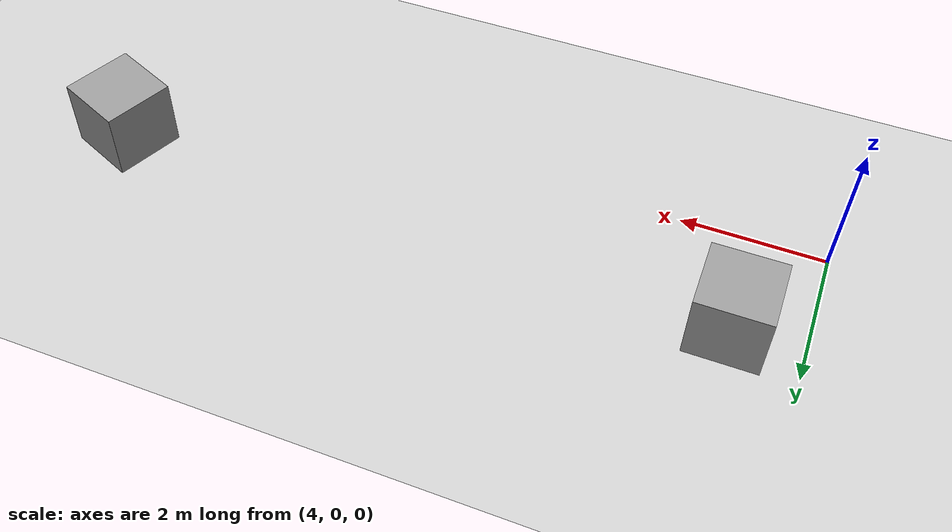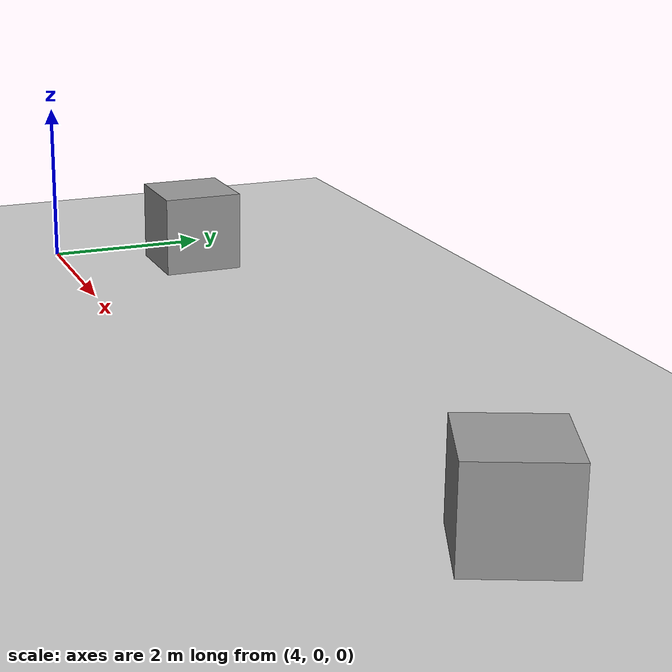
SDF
<sdf version="1.4">
 <world name="default">
  <light name="sun" type="directional">
   <pose>0 0 10 0 -0 0</pose>
   <diffuse>0.8 0.8 0.8 1</diffuse>
   <specular>0.2 0.2 0.2 1</specular>
   <attenuation>
    <range>1000</range>
    <constant>0.9</constant>
    <linear>0.01</linear>
    <quadratic>0.001</quadratic>
   </attenuation>
   <direction>-0.5 0.1 -0.9</direction>
  </light>
  <model name="ground_plane">
   <static>1</static>
   <link name="link">
    <collision name="collision">
     <geometry><plane><normal>0 0 1</normal><size>100 100</size></plane></geometry>
     <surface><friction><ode><mu>100</mu><mu2>50</mu2></ode></friction></surface>
    </collision>
    <visual name="visual">
     <cast_shadows>0</cast_shadows>
     <geometry><plane><normal>0 0 1</normal><size>100 100</size></plane></geometry>
     <material>
      <script><uri>file://media/materials/scripts/gazebo.material</uri><name>Gazebo/Grey</name></script>
     </material>
    </visual>
    <velocity_decay><linear>0</linear><angular>0</angular></velocity_decay>
   </link>
   <link name="Wall_10">
    <collision name="Wall_10_Collision">
     <geometry><box><size>9.49071 0.2 2.5</size></box></geometry>
     <pose>0 0 1.25 0 -0 0</pose>
    </collision>
    <visual name="Wall_10_Visual">
     <pose>0 0 1.25 0 -0 0</pose>
     <geometry><box><size>9.49071 0.2 2.5</size></box></geometry>
     <material>
      <script><uri>file://media/materials/scripts/gazebo.material</uri><name>Gazebo/Grey</name></script>
     </material>
    </visual>
    <velocity_decay><linear>0</linear><angular>0</angular></velocity_decay>
    <pose>1.27753 5.13733 0 0 -0 0</pose>
   </link>
   <link name="Wall_11">
    <collision name="Wall_11_Collision">
     <geometry><box><size>1.79973 0.2 2.5</size></box></geometry>
     <pose>0 0 1.25 0 -0 0</pose>
    </collision>
    <visual name="Wall_11_Visual">
     <pose>0 0 1.25 0 -0 0</pose>
     <geometry><box><size>1.79973 0.2 2.5</size></box></geometry>
     <material>
      <script><uri>file://media/materials/scripts/gazebo.material</uri><name>Gazebo/Grey</name></script>
     </material>
    </visual>
    <velocity_decay><linear>0</linear><angular>0</angular></velocity_decay>
    <pose>5.92288 4.33747 0 0 0 -1.5708</pose>
   </link>
   <link name="Wall_13">
    <collision name="Wall_13_Collision">
     <geometry><box><size>1.37321 0.2 2.5</size></box></geometry>
     <pose>0 0 1.25 0 -0 0</pose>
    </collision>
    <visual name="Wall_13_Visual">
     <pose>0 0 1.25 0 -0 0</pose>
     <geometry><box><size>1.37321 0.2 2.5</size></box></geometry>
     <material>
      <script><uri>file://media/materials/scripts/gazebo.material</uri><name>Gazebo/Grey</name></script>
     </material>
    </visual>
    <velocity_decay><linear>0</linear><angular>0</angular></velocity_decay>
    <pose>5.9141 2.94742 0 0 0 -1.5708</pose>
   </link>
   <link name="Wall_16">
    <collision name="Wall_16_Collision">
     <geometry><box><size>3.4769 0.2 2.5</size></box></geometry>
     <pose>0 0 1.25 0 -0 0</pose>
    </collision>
    <visual name="Wall_16_Visual">
     <pose>0 0 1.25 0 -0 0</pose>
     <geometry><box><size>3.4769 0.2 2.5</size></box></geometry>
     <material>
      <script><uri>file://media/materials/scripts/gazebo.material</uri><name>Gazebo/Grey</name></script>
     </material>
    </visual>
    <velocity_decay><linear>0</linear><angular>0</angular></velocity_decay>
    <pose>5.9141 -0.976775 0 0 -0 1.5708</pose>
   </link>
   <link name="Wall_25">
    <collision name="Wall_25_Collision">
     <geometry><box><size>3.67918 0.2 2.5</size></box></geometry>
     <pose>0 0 1.25 0 -0 0</pose>
    </collision>
    <visual name="Wall_25_Visual">
     <pose>0 0 1.25 0 -0 0</pose>
     <geometry><box><size>3.67918 0.2 2.5</size></box></geometry>
     <material>
      <script><uri>file://media/materials/scripts/gazebo.material</uri><name>Gazebo/Grey</name></script>
     </material>
    </visual>
    <velocity_decay><linear>0</linear><angular>0</angular></velocity_decay>
    <pose>7.69414 5.1927 0 0 -0 0</pose>
   </link>
   <link name="Wall_26">
    <collision name="Wall_26_Collision">
     <geometry><box><size>8.07609 0.2 2.5</size></box></geometry>
     <pose>0 0 1.25 0 -0 0</pose>
    </collision>
    <visual name="Wall_26_Visual">
     <pose>0 0 1.25 0 -0 0</pose>
     <geometry><box><size>8.07609 0.2 2.5</size></box></geometry>
     <material>
      <script><uri>file://media/materials/scripts/gazebo.material</uri><name>Gazebo/Grey</name></script>
     </material>
    </visual>
    <velocity_decay><linear>0</linear><angular>0</angular></velocity_decay>
    <pose>9.43373 1.25466 0 0 0 -1.5708</pose>
   </link>
   <link name="Wall_28">
    <collision name="Wall_28_Collision">
     <geometry><box><size>4.32581 0.2 2.5</size></box></geometry>
     <pose>0 0 1.25 0 -0 0</pose>
    </collision>
    <visual name="Wall_28_Visual">
     <pose>0 0 1.25 0 -0 0</pose>
     <geometry><box><size>4.32581 0.2 2.5</size></box></geometry>
     <material>
      <script><uri>file://media/materials/scripts/gazebo.material</uri><name>Gazebo/Grey</name></script>
     </material>
    </visual>
    <velocity_decay><linear>0</linear><angular>0</angular></velocity_decay>
    <pose>5.95309 -4.60053 0 0 0 -1.5708</pose>
   </link>
   <link name="Wall_29">
    <collision name="Wall_29_Collision">
     <geometry><box><size>3.67608 0.2 2.5</size></box></geometry>
     <pose>0 0 1.25 0 -0 0</pose>
    </collision>
    <visual name="Wall_29_Visual">
     <pose>0 0 1.25 0 -0 0</pose>
     <geometry><box><size>3.67608 0.2 2.5</size></box></geometry>
     <material>
      <script><uri>file://media/materials/scripts/gazebo.material</uri><name>Gazebo/Grey</name></script>
     </material>
    </visual>
    <velocity_decay><linear>0</linear><angular>0</angular></velocity_decay>
    <pose>7.69113 -6.66343 0 0 -0 0</pose>
   </link>
   <link name="Wall_30">
    <collision name="Wall_30_Collision">
     <geometry><box><size>2.44711 0.2 2.5</size></box></geometry>
     <pose>0 0 1.25 0 -0 0</pose>
    </collision>
    <visual name="Wall_30_Visual">
     <pose>0 0 1.25 0 -0 0</pose>
     <geometry><box><size>2.44711 0.2 2.5</size></box></geometry>
     <material>
      <script><uri>file://media/materials/scripts/gazebo.material</uri><name>Gazebo/Grey</name></script>
     </material>
    </visual>
    <velocity_decay><linear>0</linear><angular>0</angular></velocity_decay>
    <pose>9.42917 -5.53988 0 0 -0 1.5708</pose>
   </link>
   <link name="Wall_33">
    <collision name="Wall_33_Collision">
     <geometry><box><size>4.5337 0.2 2.5</size></box></geometry>
     <pose>0 0 1.25 0 -0 0</pose>
    </collision>
    <visual name="Wall_33_Visual">
     <pose>0 0 1.25 0 -0 0</pose>
     <geometry><box><size>4.5337 0.2 2.5</size></box></geometry>
     <material>
      <script><uri>file://media/materials/scripts/gazebo.material</uri><name>Gazebo/Grey</name></script>
     </material>
    </visual>
    <velocity_decay><linear>0</linear><angular>0</angular></velocity_decay>
    <pose>11.6495 5.10712 0 0 -0 0</pose>
   </link>
   <link name="Wall_34">
    <collision name="Wall_34_Collision">
     <geometry><box><size>2.66112 0.2 2.5</size></box></geometry>
     <pose>0 0 1.25 0 -0 0</pose>
    </collision>
    <visual name="Wall_34_Visual">
     <pose>0 0 1.25 0 -0 0</pose>
     <geometry><box><size>2.66112 0.2 2.5</size></box></geometry>
     <material>
      <script><uri>file://media/materials/scripts/gazebo.material</uri><name>Gazebo/Grey</name></script>
     </material>
    </visual>
    <velocity_decay><linear>0</linear><angular>0</angular></velocity_decay>
    <pose>13.8164 3.87656 0 0 0 -1.5708</pose>
   </link>
   <link name="Wall_35">
    <collision name="Wall_35_Collision">
     <geometry><box><size>4.90822 0.2 2.5</size></box></geometry>
     <pose>0 0 1.25 0 -0 0</pose>
    </collision>
    <visual name="Wall_35_Visual">
     <pose>0 0 1.25 0 -0 0</pose>
     <geometry><box><size>4.90822 0.2 2.5</size></box></geometry>
     <material>
      <script><uri>file://media/materials/scripts/gazebo.material</uri><name>Gazebo/Grey</name></script>
     </material>
    </visual>
    <velocity_decay><linear>0</linear><angular>0</angular></velocity_decay>
    <pose>16.1705 2.64601 0 0 -0 0</pose>
   </link>
   <link name="Wall_36">
    <collision name="Wall_36_Collision">
     <geometry><box><size>9.45593 0.2 2.5</size></box></geometry>
     <pose>0 0 1.25 0 -0 0</pose>
    </collision>
    <visual name="Wall_36_Visual">
     <pose>0 0 1.25 0 -0 0</pose>
     <geometry><box><size>9.45593 0.2 2.5</size></box></geometry>
     <material>
      <script><uri>file://media/materials/scripts/gazebo.material</uri><name>Gazebo/Grey</name></script>
     </material>
    </visual>
    <velocity_decay><linear>0</linear><angular>0</angular></velocity_decay>
    <pose>18.5246 -1.98196 0 0 0 -1.5708</pose>
   </link>
   <link name="Wall_37">
    <collision name="Wall_37_Collision">
     <geometry><box><size>9.18842 0.2 2.5</size></box></geometry>
     <pose>0 0 1.25 0 -0 0</pose>
    </collision>
    <visual name="Wall_37_Visual">
     <pose>0 0 1.25 0 -0 0</pose>
     <geometry><box><size>9.18842 0.2 2.5</size></box></geometry>
     <material>
      <script><uri>file://media/materials/scripts/gazebo.material</uri><name>Gazebo/Grey</name></script>
     </material>
    </visual>
    <velocity_decay><linear>0</linear><angular>0</angular></velocity_decay>
    <pose>14.0304 -6.60993 0 0 -0 3.14159</pose>
   </link>
   <link name="Wall_7">
    <collision name="Wall_7_Collision">
     <geometry><box><size>12.9363 0.2 2.5</size></box></geometry>
     <pose>0 0 1.25 0 -0 0</pose>
    </collision>
    <visual name="Wall_7_Visual">
     <pose>0 0 1.25 0 -0 0</pose>
     <geometry><box><size>12.9363 0.2 2.5</size></box></geometry>
     <material>
      <script><uri>file://media/materials/scripts/gazebo.material</uri><name>Gazebo/Grey</name></script>
     </material>
    </visual>
    <velocity_decay><linear>0</linear><angular>0</angular></velocity_decay>
    <pose>-0.322199 -2.61518 0 0 -0 3.14159</pose>
   </link>
   <link name="Wall_8">
    <collision name="Wall_8_Collision">
     <geometry><box><size>5.36834 0.2 2.5</size></box></geometry>
     <pose>0 0 1.25 0 -0 0</pose>
    </collision>
    <visual name="Wall_8_Visual">
     <pose>0 0 1.25 0 -0 0</pose>
     <geometry><box><size>5.36834 0.2 2.5</size></box></geometry>
     <material>
      <script><uri>file://media/materials/scripts/gazebo.material</uri><name>Gazebo/Grey</name></script>
     </material>
    </visual>
    <velocity_decay><linear>0</linear><angular>0</angular></velocity_decay>
    <pose>-6.69033 -0.031012 0 0 -0 1.5708</pose>
   </link>
   <link name="Wall_9">
    <collision name="Wall_9_Collision">
     <geometry><box><size>4.40915 0.2 2.5</size></box></geometry>
     <pose>0 0 1.25 0 -0 0</pose>
    </collision>
    <visual name="Wall_9_Visual">
     <pose>0 0 1.25 0 -0 0</pose>
     <geometry><box><size>4.40915 0.2 2.5</size></box></geometry>
     <material>
      <script><uri>file://media/materials/scripts/gazebo.material</uri><name>Gazebo/Grey</name></script>
     </material>
    </visual>
    <velocity_decay><linear>0</linear><angular>0</angular></velocity_decay>
    <pose>-5.02908 3.84524 0 0 -0 0.661043</pose>
   </link>
  </model>
  <physics type="ode">
   <max_step_size>0.001</max_step_size>
   <real_time_factor>1</real_time_factor>
   <real_time_update_rate>1000</real_time_update_rate>
   <gravity>0 0 -9.8</gravity>
  </physics>
  <scene><ambient>0.4 0.4 0.4 1</ambient><background>0.7 0.7 0.7 1</background><shadows>1</shadows></scene>
  <model name="unit_box_2">
   <pose>4.97674 1.61436 0.5 0 -0 0</pose>
   <link name="link">
    <inertial>
     <mass>1</mass>
     <inertia><ixx>1</ixx><ixy>0</ixy><ixz>0</ixz><iyy>1</iyy><iyz>0</iyz><izz>1</izz></inertia>
    </inertial>
    <collision name="collision"><geometry><box><size>1 1 1</size></box></geometry></collision>
    <visual name="visual">
     <geometry><box><size>1 1 1</size></box></geometry>
     <material>
      <script><uri>file://media/materials/scripts/gazebo.material</uri><name>Gazebo/Grey</name></script>
     </material>
    </visual>
    <velocity_decay><linear>0</linear><angular>0</angular></velocity_decay>
   </link>
   <static>0</static>
  </model>
  <model name="unit_box_3">
   <pose>13.8228 1.3921 0.5 0 -0 -0.4</pose>
   <link name="link">
    <inertial>
     <mass>1</mass>
     <inertia><ixx>1</ixx><ixy>0</ixy><ixz>0</ixz><iyy>1</iyy><iyz>0</iyz><izz>1</izz></inertia>
    </inertial>
    <collision name="collision"><geometry><box><size>1 1 1</size></box></geometry></collision>
    <visual name="visual">
     <geometry><box><size>1 1 1</size></box></geometry>
     <material>
      <script><uri>file://media/materials/scripts/gazebo.material</uri><name>Gazebo/Grey</name></script>
     </material>
    </visual>
    <velocity_decay><linear>0</linear><angular>0</angular></velocity_decay>
   </link>
   <static>0</static>
  </model>
 </world>
</sdf>
